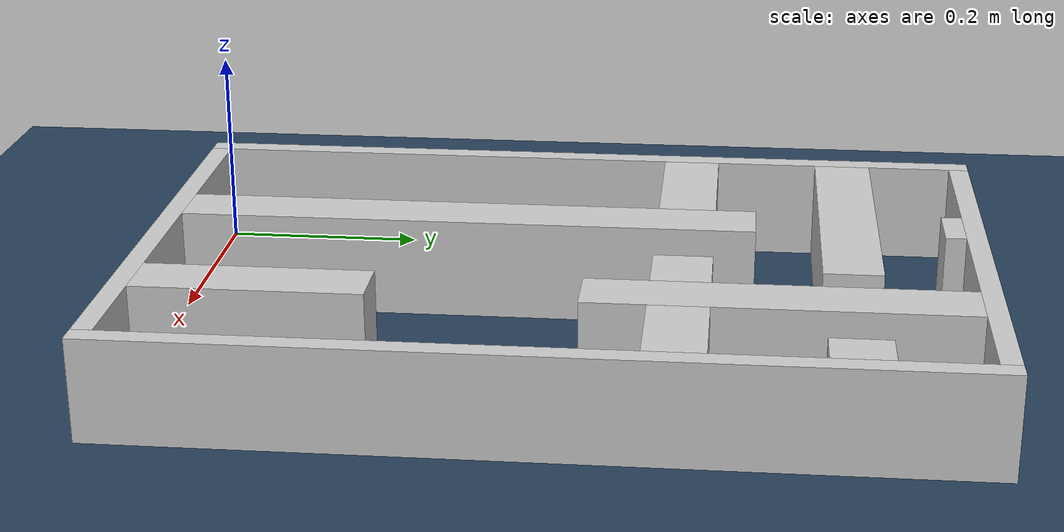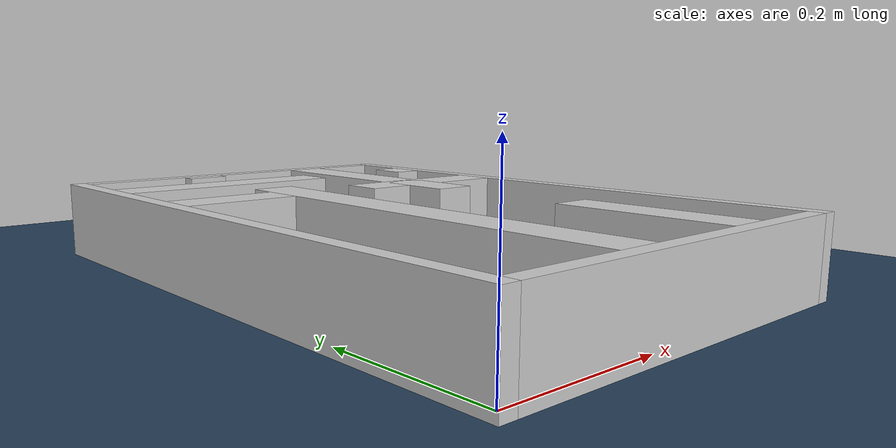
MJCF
<?xml version="1.0" ?>
<mujoco model="generated_real_template">
  <compiler angle="degree"/>
  <option timestep="0.002" integrator="implicitfast" iterations="100" cone="elliptic"/>
  <default>
    <geom density="1"/>
  </default>
  <asset>
    <texture builtin="gradient" height="3072" rgb1="0.3 0.5 0.7" rgb2="0 0 0" type="skybox" width="512"/>
    <texture builtin="checker" height="300" mark="edge" markrgb="0.8 0.8 0.8" name="groundplane" rgb1="0.2 0.3 0.4" rgb2="0.1 0.2 0.3" type="2d" width="300"/>
    <material name="groundplane" reflectance="0.2" texrepeat="5 5" texture="groundplane" texuniform="true"/>
  </asset>
  <worldbody>
    <light dir="0 0 -1" directional="true" pos="0 0 1.5"/>
    <geom name="floor" type="plane" condim="4" friction="0.5 0.005 0.001" material="groundplane" size="0 0 0.05"/>
    <body name="walls">
      <geom name="wall_boundary_left" type="box" condim="4" friction="1.0 0.005 0.0001" rgba="0.8 0.8 0.8 1" pos="-0.010000 0.387500 0.050000" euler="0 0 0.000000" size="0.010000 0.407500 0.050000"/>
      <geom name="wall_boundary_right" type="box" condim="4" friction="1.0 0.005 0.0001" rgba="0.8 0.8 0.8 1" pos="0.500000 0.387500 0.050000" euler="0 0 0.000000" size="0.010000 0.407500 0.050000"/>
      <geom name="wall_boundary_bottom" type="box" condim="4" friction="1.0 0.005 0.0001" rgba="0.8 0.8 0.8 1" pos="0.245000 -0.010000 0.050000" euler="0 0 0.000000" size="0.245000 0.010000 0.050000"/>
      <geom name="wall_boundary_top" type="box" condim="4" friction="1.0 0.005 0.0001" rgba="0.8 0.8 0.8 1" pos="0.245000 0.785000 0.050000" euler="0 0 0.000000" size="0.245000 0.010000 0.050000"/>
      <geom name="wall_inner_1_1" type="box" condim="4" friction="1.0 0.005 0.0001" rgba="0.8 0.8 0.8 1" pos="0.173007 0.285870 0.050000" euler="0 0 90.000000" size="0.285870 0.028500 0.050000"/>
      <geom name="wall_inner_1_2" type="box" condim="4" friction="1.0 0.005 0.0001" rgba="0.8 0.8 0.8 1" pos="0.173007 0.764908 0.050000" euler="0 0 90.000000" size="0.010092 0.028500 0.050000"/>
      <geom name="wall_inner_2_1" type="box" condim="4" friction="1.0 0.005 0.0001" rgba="0.8 0.8 0.8 1" pos="0.362333 0.109656 0.050000" euler="0 0 90.000000" size="0.109656 0.028500 0.050000"/>
      <geom name="wall_inner_2_2" type="box" condim="4" friction="1.0 0.005 0.0001" rgba="0.8 0.8 0.8 1" pos="0.362333 0.594168 0.050000" euler="0 0 90.000000" size="0.180832 0.028500 0.050000"/>
      <geom name="wall_inner_3_1" type="box" condim="4" friction="1.0 0.005 0.0001" rgba="0.8 0.8 0.8 1" pos="0.093037 0.503212 0.050000" euler="0 0 0.000000" size="0.093037 0.028500 0.050000"/>
      <geom name="wall_inner_3_2" type="box" condim="4" friction="1.0 0.005 0.0001" rgba="0.8 0.8 0.8 1" pos="0.380133 0.503212 0.050000" euler="0 0 0.000000" size="0.109867 0.028500 0.050000"/>
      <geom name="wall_inner_4_1" type="box" condim="4" friction="1.0 0.005 0.0001" rgba="0.8 0.8 0.8 1" pos="0.151511 0.662363 0.050000" euler="0 0 0.000000" size="0.151511 0.028500 0.050000"/>
      <geom name="wall_inner_4_2" type="box" condim="4" friction="1.0 0.005 0.0001" rgba="0.8 0.8 0.8 1" pos="0.469141 0.662363 0.050000" euler="0 0 0.000000" size="0.020859 0.028500 0.050000"/>
    </body>
  </worldbody>
</mujoco>
